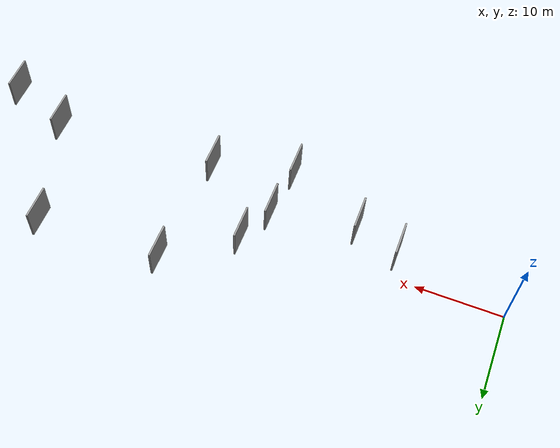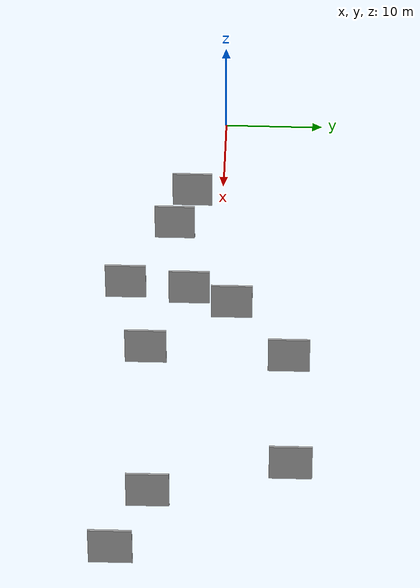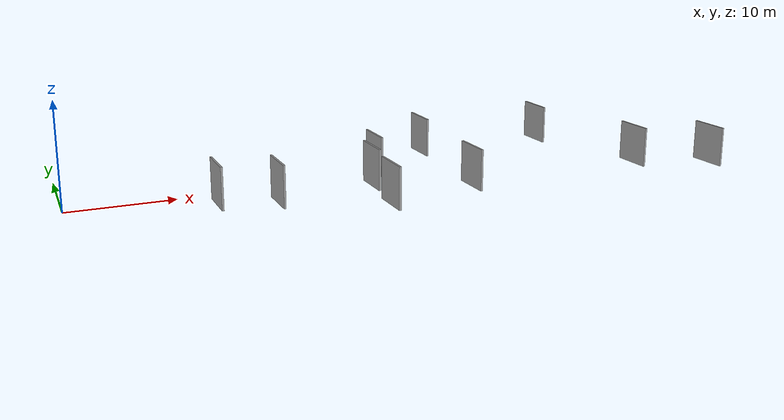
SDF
<sdf version="1.6">
 <world name="default">
  <scene>
   <sky><clouds><speed>12</speed></clouds></sky>
   <ambient>0.4 0.4 0.4 1</ambient>
   <background>0.7 0.7 0.7 1</background>
   <shadows>1</shadows>
  </scene>
  <gravity>0 0 -9.8066</gravity>
  <magnetic_field>6e-06 2.3e-05 -4.2e-05</magnetic_field>
  <physics default="0" name="default_physics" type="ode">
   <ode>
    <solver>
     <type>quick</type>
     <iters>10</iters>
     <sor>1.0</sor>
     <use_dynamic_moi_rescaling>0</use_dynamic_moi_rescaling>
    </solver>
    <constraints>
     <cfm>0</cfm>
     <erp>0.2</erp>
     <contact_max_correcting_vel>100</contact_max_correcting_vel>
     <contact_surface_layer>0.001</contact_surface_layer>
    </constraints>
   </ode>
   <max_step_size>0.004</max_step_size>
   <real_time_factor>1</real_time_factor>
   <real_time_update_rate>250</real_time_update_rate>
  </physics>
  <light name="sun" type="directional">
   <pose>0 0 10 0 0 0</pose>
   <diffuse>0.8 0.8 0.8 1</diffuse>
   <specular>0.2 0.2 0.2 1</specular>
   <attenuation>
    <range>1000</range>
    <constant>0.9</constant>
    <linear>0.01</linear>
    <quadratic>0.001</quadratic>
   </attenuation>
   <direction>-0.5 0.1 -0.9</direction>
  </light>
  <model name="grey_wall_1">
   <static>1</static>
   <pose>13.0050 -3.0551 0.0 0.000000 0.000000 1.570796</pose>
   <link name="link">
    <pose>0 0 2.00 0 0 0</pose>
    <collision name="collision"><geometry><box><size>4.00 0.2 4.00</size></box></geometry></collision>
    <visual name="visual">
     <cast_shadows>0</cast_shadows>
     <geometry><box><size>4.00 0.2 4.00</size></box></geometry>
     <material>
      <script>
       <uri>model://grey_wall/materials/scripts</uri>
       <uri>model://grey_wall/materials/textures</uri>
       <name>vrc/grey_wall</name>
      </script>
     </material>
    </visual>
   </link>
  </model>
  <model name="grey_wall_2">
   <static>1</static>
   <pose>30.0367 1.4079 0.0 0.000000 0.000000 1.570796</pose>
   <link name="link">
    <pose>0 0 2.00 0 0 0</pose>
    <collision name="collision"><geometry><box><size>4.00 0.2 4.00</size></box></geometry></collision>
    <visual name="visual">
     <cast_shadows>0</cast_shadows>
     <geometry><box><size>4.00 0.2 4.00</size></box></geometry>
     <material>
      <script>
       <uri>model://grey_wall/materials/scripts</uri>
       <uri>model://grey_wall/materials/textures</uri>
       <name>vrc/grey_wall</name>
      </script>
     </material>
    </visual>
   </link>
  </model>
  <model name="grey_wall_3">
   <static>1</static>
   <pose>56.2517 -5.6090 0.0 0.000000 0.000000 1.570796</pose>
   <link name="link">
    <pose>0 0 2.00 0 0 0</pose>
    <collision name="collision"><geometry><box><size>4.00 0.2 4.00</size></box></geometry></collision>
    <visual name="visual">
     <cast_shadows>0</cast_shadows>
     <geometry><box><size>4.00 0.2 4.00</size></box></geometry>
     <material>
      <script>
       <uri>model://grey_wall/materials/scripts</uri>
       <uri>model://grey_wall/materials/textures</uri>
       <name>vrc/grey_wall</name>
      </script>
     </material>
    </visual>
   </link>
  </model>
  <model name="grey_wall_4">
   <static>1</static>
   <pose>27.3315 -9.1067 0.0 0.000000 0.000000 1.570796</pose>
   <link name="link">
    <pose>0 0 2.00 0 0 0</pose>
    <collision name="collision"><geometry><box><size>4.00 0.2 4.00</size></box></geometry></collision>
    <visual name="visual">
     <cast_shadows>0</cast_shadows>
     <geometry><box><size>4.00 0.2 4.00</size></box></geometry>
     <material>
      <script>
       <uri>model://grey_wall/materials/scripts</uri>
       <uri>model://grey_wall/materials/textures</uri>
       <name>vrc/grey_wall</name>
      </script>
     </material>
    </visual>
   </link>
  </model>
  <model name="grey_wall_5">
   <static>1</static>
   <pose>37.6496 7.0851 0.0 0.000000 0.000000 1.570796</pose>
   <link name="link">
    <pose>0 0 2.00 0 0 0</pose>
    <collision name="collision"><geometry><box><size>4.00 0.2 4.00</size></box></geometry></collision>
    <visual name="visual">
     <cast_shadows>0</cast_shadows>
     <geometry><box><size>4.00 0.2 4.00</size></box></geometry>
     <material>
      <script>
       <uri>model://grey_wall/materials/scripts</uri>
       <uri>model://grey_wall/materials/textures</uri>
       <name>vrc/grey_wall</name>
      </script>
     </material>
    </visual>
   </link>
  </model>
  <model name="grey_wall_6">
   <static>1</static>
   <pose>63.5229 -8.6270 0.0 0.000000 0.000000 1.570796</pose>
   <link name="link">
    <pose>0 0 2.00 0 0 0</pose>
    <collision name="collision"><geometry><box><size>4.00 0.2 4.00</size></box></geometry></collision>
    <visual name="visual">
     <cast_shadows>0</cast_shadows>
     <geometry><box><size>4.00 0.2 4.00</size></box></geometry>
     <material>
      <script>
       <uri>model://grey_wall/materials/scripts</uri>
       <uri>model://grey_wall/materials/textures</uri>
       <name>vrc/grey_wall</name>
      </script>
     </material>
    </visual>
   </link>
  </model>
  <model name="grey_wall_7">
   <static>1</static>
   <pose>18.1805 -4.6405 0.0 0.000000 0.000000 1.570796</pose>
   <link name="link">
    <pose>0 0 2.00 0 0 0</pose>
    <collision name="collision"><geometry><box><size>4.00 0.2 4.00</size></box></geometry></collision>
    <visual name="visual">
     <cast_shadows>0</cast_shadows>
     <geometry><box><size>4.00 0.2 4.00</size></box></geometry>
     <material>
      <script>
       <uri>model://grey_wall/materials/scripts</uri>
       <uri>model://grey_wall/materials/textures</uri>
       <name>vrc/grey_wall</name>
      </script>
     </material>
    </visual>
   </link>
  </model>
  <model name="grey_wall_8">
   <static>1</static>
   <pose>36.7448 -6.7067 0.0 0.000000 0.000000 1.570796</pose>
   <link name="link">
    <pose>0 0 2.00 0 0 0</pose>
    <collision name="collision"><geometry><box><size>4.00 0.2 4.00</size></box></geometry></collision>
    <visual name="visual">
     <cast_shadows>0</cast_shadows>
     <geometry><box><size>4.00 0.2 4.00</size></box></geometry>
     <material>
      <script>
       <uri>model://grey_wall/materials/scripts</uri>
       <uri>model://grey_wall/materials/textures</uri>
       <name>vrc/grey_wall</name>
      </script>
     </material>
    </visual>
   </link>
  </model>
  <model name="grey_wall_9">
   <static>1</static>
   <pose>28.0282 -2.8340 0.0 0.000000 0.000000 1.570796</pose>
   <link name="link">
    <pose>0 0 2.00 0 0 0</pose>
    <collision name="collision"><geometry><box><size>4.00 0.2 4.00</size></box></geometry></collision>
    <visual name="visual">
     <cast_shadows>0</cast_shadows>
     <geometry><box><size>4.00 0.2 4.00</size></box></geometry>
     <material>
      <script>
       <uri>model://grey_wall/materials/scripts</uri>
       <uri>model://grey_wall/materials/textures</uri>
       <name>vrc/grey_wall</name>
      </script>
     </material>
    </visual>
   </link>
  </model>
  <model name="grey_wall_10">
   <static>1</static>
   <pose>52.3200 7.4506 0.0 0.000000 0.000000 1.570796</pose>
   <link name="link">
    <pose>0 0 2.00 0 0 0</pose>
    <collision name="collision"><geometry><box><size>4.00 0.2 4.00</size></box></geometry></collision>
    <visual name="visual">
     <cast_shadows>0</cast_shadows>
     <geometry><box><size>4.00 0.2 4.00</size></box></geometry>
     <material>
      <script>
       <uri>model://grey_wall/materials/scripts</uri>
       <uri>model://grey_wall/materials/textures</uri>
       <name>vrc/grey_wall</name>
      </script>
     </material>
    </visual>
   </link>
  </model>
 </world>
</sdf>
